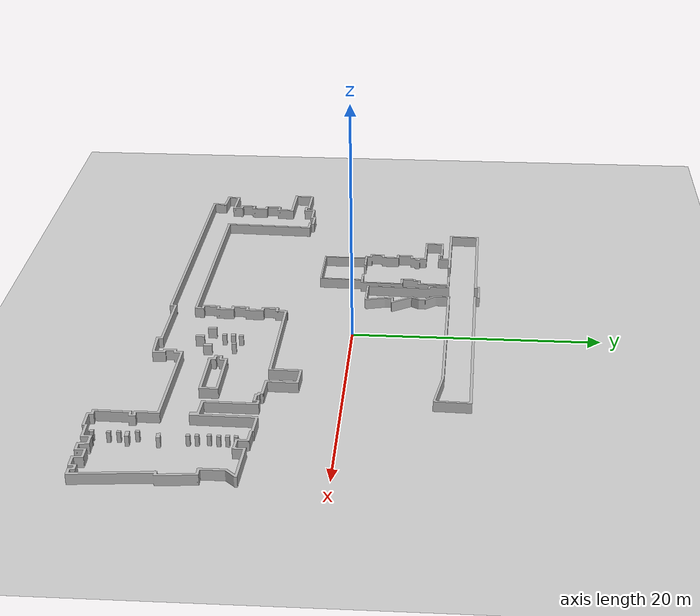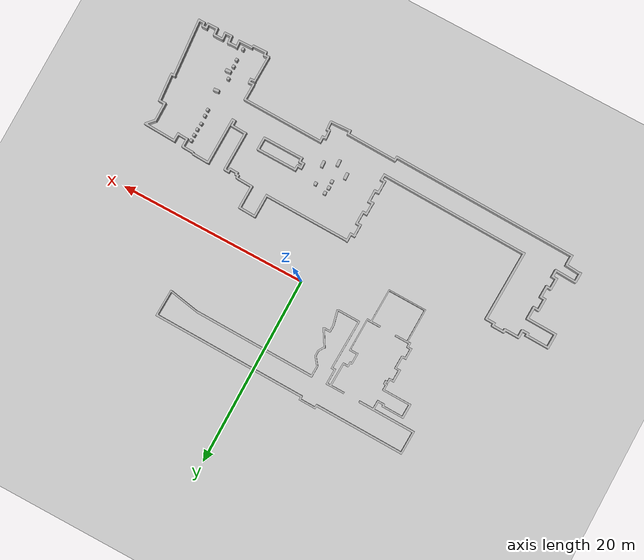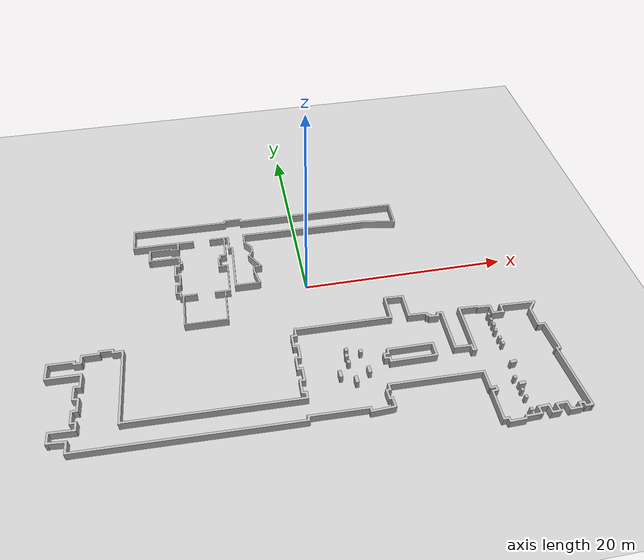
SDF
<?xml version="1.0"?>
<sdf version="1.6">
  <world name="FEI">

    <include>
      <uri>model://ground_plane</uri>
    </include>

    <include>
      <uri>model://sun</uri>
    </include>

    <!-- maps -->

    <model name="terceiro_andar">
      <static>true</static>
      <pose>1.349126 -8.568426 0 0 0 -0.384178</pose> <!-- x y z roll pitch yaw -->
      <link name="link">
        <visual name="visual">
          <geometry>
            <mesh>
              <uri>file:///home/llagoeiro/FEI/TCC/OmniCare/software/src/omnicare_simulation/simulation/stl/HU_terceiroAndarHU.stl</uri>
              <scale>1 1 1</scale>
            </mesh>
          </geometry>
        </visual>

        <collision name="collision">
          <geometry>
            <mesh>
              <uri>file:///home/llagoeiro/FEI/TCC/OmniCare/software/src/omnicare_simulation/simulation/stl/HU_terceiroAndarHU.stl</uri>
              <scale>1 1 1</scale>
            </mesh>
          </geometry>
        </collision>
      </link>
    </model>

    <model name="primeiro_andar">
      <static>true</static>
      <pose>-9.367207 8.048828 0 0 0 -0.020004</pose> <!-- x y z roll pitch yaw -->
      <link name="link">
        <visual name="visual">
          <geometry>
            <mesh>
              <uri>file:///home/llagoeiro/FEI/TCC/OmniCare/software/src/omnicare_simulation/simulation/stl/HU_primeiroAndar.stl</uri>
              <scale>1 1 1</scale>
            </mesh>
          </geometry>
        </visual>

        <collision name="collision">
          <geometry>
            <mesh>
              <uri>file:///home/llagoeiro/FEI/TCC/OmniCare/software/src/omnicare_simulation/simulation/stl/HU_primeiroAndar.stl</uri>
              <scale>1 1 1</scale>
            </mesh>
          </geometry>
        </collision>
      </link>
    </model>

    <plugin name="gazebo_ros_state" filename="libgazebo_ros_state.so">
      <ros>
        <namespace>/gazebo</namespace>
      </ros>
      <update_rate>1.0</update_rate>
    </plugin>

  </world>
</sdf>
